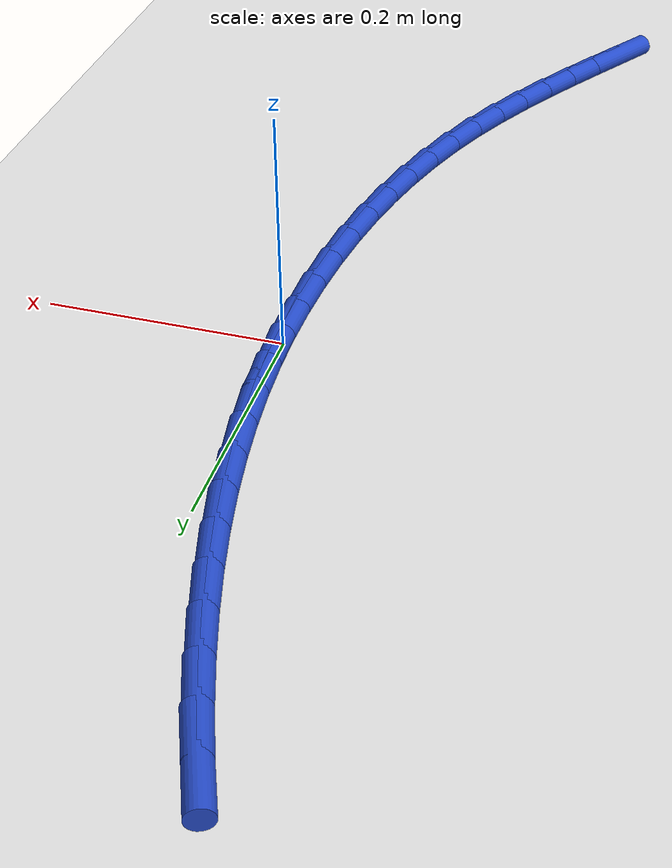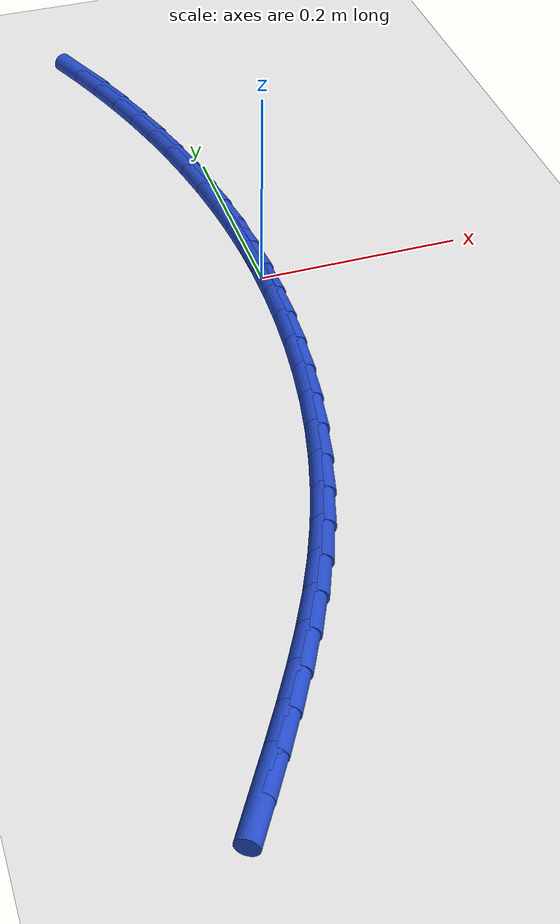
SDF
<sdf version="1.6">
 <world name="default">
  <model name="ground_plane">
   <static>1</static>
   <link name="link">
    <collision name="collision">
     <geometry><plane><normal>0 0 1</normal><size>100 100</size></plane></geometry>
     <surface><friction><ode><mu>100</mu><mu2>50</mu2></ode></friction></surface>
    </collision>
    <visual name="visual">
     <cast_shadows>0</cast_shadows>
     <geometry><plane><normal>0 0 1</normal><size>100 100</size></plane></geometry>
     <material>
      <script><uri>file://media/materials/scripts/gazebo.material</uri><name>Gazebo/WhiteGlow</name></script>
     </material>
    </visual>
   </link>
  </model>
  <model name="line">
   <link name="link_0">
    <pose>1.3877787807814457e-17 -1.0408340855860843e-16 0.01 0 1.57 -1.5421332391489484</pose>
    <collision name="collision">
     <geometry><cylinder><radius>0.01</radius><length>0.08</length></cylinder></geometry>
    </collision>
    <visual name="visual">
     <material>
      <script><name>Gazebo/Blue</name><uri>file://media/materials/scripts/gazebo.material</uri></script>
     </material>
     <geometry><cylinder><radius>0.01</radius><length>0.08</length></cylinder></geometry>
    </visual>
   </link>
   <link name="link_1">
    <pose>-0.0010749245003960762 0.037491777626178856 0.01 0 1.57 -1.5053469078658206</pose>
    <collision name="collision">
     <geometry><cylinder><radius>0.01</radius><length>0.08</length></cylinder></geometry>
    </collision>
    <visual name="visual">
     <material>
      <script><name>Gazebo/Blue</name><uri>file://media/materials/scripts/gazebo.material</uri></script>
     </material>
     <geometry><cylinder><radius>0.01</radius><length>0.08</length></cylinder></geometry>
    </visual>
   </link>
   <link name="link_2">
    <pose>-0.003518153114048679 0.07476848734604769 0.01 0 1.57 -1.4690658758729462</pose>
    <collision name="collision">
     <geometry><cylinder><radius>0.01</radius><length>0.08</length></cylinder></geometry>
    </collision>
    <visual name="visual">
     <material>
      <script><name>Gazebo/Blue</name><uri>file://media/materials/scripts/gazebo.material</uri></script>
     </material>
     <geometry><cylinder><radius>0.01</radius><length>0.08</length></cylinder></geometry>
    </visual>
   </link>
   <link name="link_3">
    <pose>-0.007303399781707515 0.11184863069882904 0.01 0 1.57 -1.4334366648536658</pose>
    <collision name="collision">
     <geometry><cylinder><radius>0.01</radius><length>0.08</length></cylinder></geometry>
    </collision>
    <visual name="visual">
     <material>
      <script><name>Gazebo/Blue</name><uri>file://media/materials/scripts/gazebo.material</uri></script>
     </material>
     <geometry><cylinder><radius>0.01</radius><length>0.08</length></cylinder></geometry>
    </visual>
   </link>
   <link name="link_4">
    <pose>-0.012404378444122309 0.14875070922374561 0.01 0 1.57 -1.3985943655154314</pose>
    <collision name="collision">
     <geometry><cylinder><radius>0.01</radius><length>0.08</length></cylinder></geometry>
    </collision>
    <visual name="visual">
     <material>
      <script><name>Gazebo/Blue</name><uri>file://media/materials/scripts/gazebo.material</uri></script>
     </material>
     <geometry><cylinder><radius>0.01</radius><length>0.08</length></cylinder></geometry>
    </visual>
   </link>
   <link name="link_5">
    <pose>-0.018794803042042778 0.18549322446002 0.01 0 1.57 -1.3646605015364055</pose>
    <collision name="collision">
     <geometry><cylinder><radius>0.01</radius><length>0.08</length></cylinder></geometry>
    </collision>
    <visual name="visual">
     <material>
      <script><name>Gazebo/Blue</name><uri>file://media/materials/scripts/gazebo.material</uri></script>
     </material>
     <geometry><cylinder><radius>0.01</radius><length>0.08</length></cylinder></geometry>
    </visual>
   </link>
   <link name="link_6">
    <pose>-0.02644838751621864 0.22209467794687496 0.01 0 1.57 -1.3317415244920079</pose>
    <collision name="collision">
     <geometry><cylinder><radius>0.01</radius><length>0.08</length></cylinder></geometry>
    </collision>
    <visual name="visual">
     <material>
      <script><name>Gazebo/Blue</name><uri>file://media/materials/scripts/gazebo.material</uri></script>
     </material>
     <geometry><cylinder><radius>0.01</radius><length>0.08</length></cylinder></geometry>
    </visual>
   </link>
   <link name="link_7">
    <pose>-0.03533884580739962 0.25857357122353325 0.01 0 1.57 -1.2999279507147503</pose>
    <collision name="collision">
     <geometry><cylinder><radius>0.01</radius><length>0.08</length></cylinder></geometry>
    </collision>
    <visual name="visual">
     <material>
      <script><name>Gazebo/Blue</name><uri>file://media/materials/scripts/gazebo.material</uri></script>
     </material>
     <geometry><cylinder><radius>0.01</radius><length>0.08</length></cylinder></geometry>
    </visual>
   </link>
   <link name="link_8">
    <pose>-0.04543989185633544 0.29494840582921733 0.01 0 1.57 -1.2692941060763583</pose>
    <collision name="collision">
     <geometry><cylinder><radius>0.01</radius><length>0.08</length></cylinder></geometry>
    </collision>
    <visual name="visual">
     <material>
      <script><name>Gazebo/Blue</name><uri>file://media/materials/scripts/gazebo.material</uri></script>
     </material>
     <geometry><cylinder><radius>0.01</radius><length>0.08</length></cylinder></geometry>
    </visual>
   </link>
   <link name="link_9">
    <pose>-0.05672523960377581 0.33123768330314995 0.01 0 1.57 -1.2397175493514214</pose>
    <collision name="collision">
     <geometry><cylinder><radius>0.01</radius><length>0.08</length></cylinder></geometry>
    </collision>
    <visual name="visual">
     <material>
      <script><name>Gazebo/Blue</name><uri>file://media/materials/scripts/gazebo.material</uri></script>
     </material>
     <geometry><cylinder><radius>0.01</radius><length>0.08</length></cylinder></geometry>
    </visual>
   </link>
   <link name="link_10">
    <pose>-0.06917216732138219 0.36744896523237514 0.01 0 1.57 -1.2093169171221858</pose>
    <collision name="collision">
     <geometry><cylinder><radius>0.01</radius><length>0.08</length></cylinder></geometry>
    </collision>
    <visual name="visual">
     <material>
      <script><name>Gazebo/Blue</name><uri>file://media/materials/scripts/gazebo.material</uri></script>
     </material>
     <geometry><cylinder><radius>0.01</radius><length>0.08</length></cylinder></geometry>
    </visual>
   </link>
   <link name="link_11">
    <pose>-0.08279443073317622 0.4034778534576888 0.01 0 1.57 -1.1767810377584496</pose>
    <collision name="collision">
     <geometry><cylinder><radius>0.01</radius><length>0.08</length></cylinder></geometry>
    </collision>
    <visual name="visual">
     <material>
      <script><name>Gazebo/Blue</name><uri>file://media/materials/scripts/gazebo.material</uri></script>
     </material>
     <geometry><cylinder><radius>0.01</radius><length>0.08</length></cylinder></geometry>
    </visual>
   </link>
   <link name="link_164">
    <pose>-0.1798979860284388 -0.5581114107909538 0.01 0 1.57 1.002100176411241</pose>
    <collision name="collision">
     <geometry><cylinder><radius>0.01</radius><length>0.08</length></cylinder></geometry>
    </collision>
    <visual name="visual">
     <material>
      <script><name>Gazebo/Blue</name><uri>file://media/materials/scripts/gazebo.material</uri></script>
     </material>
     <geometry><cylinder><radius>0.01</radius><length>0.08</length></cylinder></geometry>
    </visual>
   </link>
   <link name="link_165">
    <pose>-0.15958137043124251 -0.526323515195345 0.01 0 1.57 1.0127731340513297</pose>
    <collision name="collision">
     <geometry><cylinder><radius>0.01</radius><length>0.08</length></cylinder></geometry>
    </collision>
    <visual name="visual">
     <material>
      <script><name>Gazebo/Blue</name><uri>file://media/materials/scripts/gazebo.material</uri></script>
     </material>
     <geometry><cylinder><radius>0.01</radius><length>0.08</length></cylinder></geometry>
    </visual>
   </link>
   <link name="link_166">
    <pose>-0.13983840680385748 -0.49469424327811146 0.01 0 1.57 1.0308902970233402</pose>
    <collision name="collision">
     <geometry><cylinder><radius>0.01</radius><length>0.08</length></cylinder></geometry>
    </collision>
    <visual name="visual">
     <material>
      <script><name>Gazebo/Blue</name><uri>file://media/materials/scripts/gazebo.material</uri></script>
     </material>
     <geometry><cylinder><radius>0.01</radius><length>0.08</length></cylinder></geometry>
    </visual>
   </link>
   <link name="link_167">
    <pose>-0.12085666083065442 -0.46302114808630057 0.01 0 1.57 1.0565449053993972</pose>
    <collision name="collision">
     <geometry><cylinder><radius>0.01</radius><length>0.08</length></cylinder></geometry>
    </collision>
    <visual name="visual">
     <material>
      <script><name>Gazebo/Blue</name><uri>file://media/materials/scripts/gazebo.material</uri></script>
     </material>
     <geometry><cylinder><radius>0.01</radius><length>0.08</length></cylinder></geometry>
    </visual>
   </link>
   <link name="link_168">
    <pose>-0.10282369819600454 -0.43110178266696025 0.01 0 1.57 1.0896924963484211</pose>
    <collision name="collision">
     <geometry><cylinder><radius>0.01</radius><length>0.08</length></cylinder></geometry>
    </collision>
    <visual name="visual">
     <material>
      <script><name>Gazebo/Blue</name><uri>file://media/materials/scripts/gazebo.material</uri></script>
     </material>
     <geometry><cylinder><radius>0.01</radius><length>0.08</length></cylinder></geometry>
    </visual>
   </link>
   <link name="link_169">
    <pose>-0.08592708458427904 -0.39873370006713843 0.01 0 1.57 1.1301053697028893</pose>
    <collision name="collision">
     <geometry><cylinder><radius>0.01</radius><length>0.08</length></cylinder></geometry>
    </collision>
    <visual name="visual">
     <material>
      <script><name>Gazebo/Blue</name><uri>file://media/materials/scripts/gazebo.material</uri></script>
     </material>
     <geometry><cylinder><radius>0.01</radius><length>0.08</length></cylinder></geometry>
    </visual>
   </link>
   <link name="link_170">
    <pose>-0.07035438567984884 -0.36571445333388225 0.01 0 1.57 1.1772868305269282</pose>
    <collision name="collision">
     <geometry><cylinder><radius>0.01</radius><length>0.08</length></cylinder></geometry>
    </collision>
    <visual name="visual">
     <material>
      <script><name>Gazebo/Blue</name><uri>file://media/materials/scripts/gazebo.material</uri></script>
     </material>
     <geometry><cylinder><radius>0.01</radius><length>0.08</length></cylinder></geometry>
    </visual>
   </link>
   <link name="link_171">
    <pose>-0.0562922266355628 -0.3318430642900739 0.01 0 1.57 1.2275779460327185</pose>
    <collision name="collision">
     <geometry><cylinder><radius>0.01</radius><length>0.08</length></cylinder></geometry>
    </collision>
    <visual name="visual">
     <material>
      <script><name>Gazebo/Blue</name><uri>file://media/materials/scripts/gazebo.material</uri></script>
     </material>
     <geometry><cylinder><radius>0.01</radius><length>0.08</length></cylinder></geometry>
    </visual>
   </link>
   <link name="link_172">
    <pose>-0.043852972572768274 -0.2970345225246181 0.01 0 1.57 1.2757165508931723</pose>
    <collision name="collision">
     <geometry><cylinder><radius>0.01</radius><length>0.08</length></cylinder></geometry>
    </collision>
    <visual name="visual">
     <material>
      <script><name>Gazebo/Blue</name><uri>file://media/materials/scripts/gazebo.material</uri></script>
     </material>
     <geometry><cylinder><radius>0.01</radius><length>0.08</length></cylinder></geometry>
    </visual>
   </link>
   <link name="link_173">
    <pose>-0.033022262161670465 -0.26140171928547334 0.01 0 1.57 1.3214772476623793</pose>
    <collision name="collision">
     <geometry><cylinder><radius>0.01</radius><length>0.08</length></cylinder></geometry>
    </collision>
    <visual name="visual">
     <material>
      <script><name>Gazebo/Blue</name><uri>file://media/materials/scripts/gazebo.material</uri></script>
     </material>
     <geometry><cylinder><radius>0.01</radius><length>0.08</length></cylinder></geometry>
    </visual>
   </link>
   <link name="link_174">
    <pose>-0.023773351217370654 -0.22507688343754262 0.01 0 1.57 1.365152655935993</pose>
    <collision name="collision">
     <geometry><cylinder><radius>0.01</radius><length>0.08</length></cylinder></geometry>
    </collision>
    <visual name="visual">
     <material>
      <script><name>Gazebo/Blue</name><uri>file://media/materials/scripts/gazebo.material</uri></script>
     </material>
     <geometry><cylinder><radius>0.01</radius><length>0.08</length></cylinder></geometry>
    </visual>
   </link>
   <link name="link_175">
    <pose>-0.016079495554970086 -0.18819224384572839 0.01 0 1.57 1.4070341408351703</pose>
    <collision name="collision">
     <geometry><cylinder><radius>0.01</radius><length>0.08</length></cylinder></geometry>
    </collision>
    <visual name="visual">
     <material>
      <script><name>Gazebo/Blue</name><uri>file://media/materials/scripts/gazebo.material</uri></script>
     </material>
     <geometry><cylinder><radius>0.01</radius><length>0.08</length></cylinder></geometry>
    </visual>
   </link>
   <link name="link_176">
    <pose>-0.009913950989569922 -0.15088002937493272 0.01 0 1.57 1.4474093043857417</pose>
    <collision name="collision">
     <geometry><cylinder><radius>0.01</radius><length>0.08</length></cylinder></geometry>
    </collision>
    <visual name="visual">
     <material>
      <script><name>Gazebo/Blue</name><uri>file://media/materials/scripts/gazebo.material</uri></script>
     </material>
     <geometry><cylinder><radius>0.01</radius><length>0.08</length></cylinder></geometry>
    </visual>
   </link>
   <link name="link_177">
    <pose>-0.0052499733362716535 -0.11327246889005979 0.01 0 1.57 1.486561447882421</pose>
    <collision name="collision">
     <geometry><cylinder><radius>0.01</radius><length>0.08</length></cylinder></geometry>
    </collision>
    <visual name="visual">
     <material>
      <script><name>Gazebo/Blue</name><uri>file://media/materials/scripts/gazebo.material</uri></script>
     </material>
     <geometry><cylinder><radius>0.01</radius><length>0.08</length></cylinder></geometry>
    </visual>
   </link>
   <link name="link_178">
    <pose>-0.0020608184101764053 -0.07550179125601152 0.01 0 1.57 1.5247705405222018</pose>
    <collision name="collision">
     <geometry><cylinder><radius>0.01</radius><length>0.08</length></cylinder></geometry>
    </collision>
    <visual name="visual">
     <material>
      <script><name>Gazebo/Blue</name><uri>file://media/materials/scripts/gazebo.material</uri></script>
     </material>
     <geometry><cylinder><radius>0.01</radius><length>0.08</length></cylinder></geometry>
    </visual>
   </link>
   <link name="link_179">
    <pose>-0.0003197420263854264 -0.03770022533769068 0.01 0 1.57 1.5623153599710116</pose>
    <collision name="collision">
     <geometry><cylinder><radius>0.01</radius><length>0.08</length></cylinder></geometry>
    </collision>
    <visual name="visual">
     <material>
      <script><name>Gazebo/Blue</name><uri>file://media/materials/scripts/gazebo.material</uri></script>
     </material>
     <geometry><cylinder><radius>0.01</radius><length>0.08</length></cylinder></geometry>
    </visual>
   </link>
   <link name="link_180">
    <pose>2.2551405187698492e-17 9.71445146547012e-17 0.01 0 1.57 -1.5421160670730285</pose>
    <collision name="collision">
     <geometry><cylinder><radius>0.01</radius><length>0.08</length></cylinder></geometry>
    </collision>
    <visual name="visual">
     <material>
      <script><name>Gazebo/Blue</name><uri>file://media/materials/scripts/gazebo.material</uri></script>
     </material>
     <geometry><cylinder><radius>0.01</radius><length>0.08</length></cylinder></geometry>
    </visual>
   </link>
   <link name="link_181">
    <pose>-0.0010748481461213197 0.037466655892158016 0.01 0 1.57 -1.542116067073029</pose>
    <collision name="collision">
     <geometry><cylinder><radius>0.01</radius><length>0.08</length></cylinder></geometry>
    </collision>
    <visual name="visual">
     <material>
      <script><name>Gazebo/Blue</name><uri>file://media/materials/scripts/gazebo.material</uri></script>
     </material>
     <geometry><cylinder><radius>0.01</radius><length>0.08</length></cylinder></geometry>
    </visual>
   </link>
  </model>
 </world>
</sdf>
